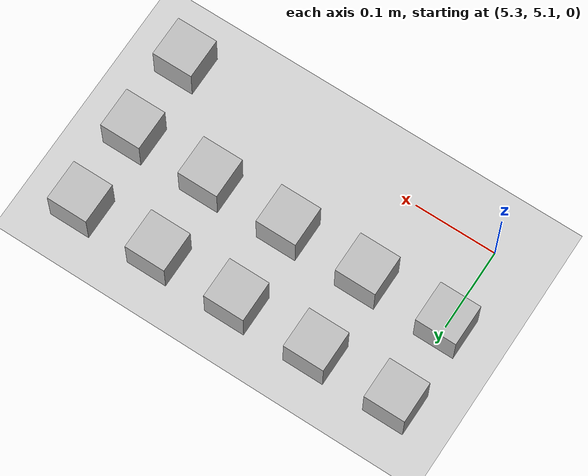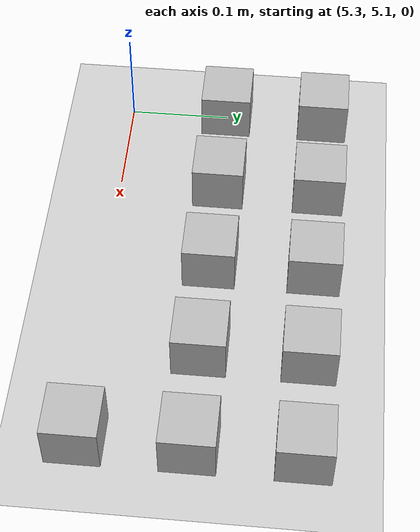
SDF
<sdf version="5.1">
 <world name="default">
  <model name="ground_plane">
   <static>1</static>
   <link name="link">
    <collision name="collision">
     <geometry><plane><normal>0 0 1</normal><size>100 100</size></plane></geometry>
     <surface><friction><ode><mu>100</mu><mu2>50</mu2></ode></friction></surface>
    </collision>
    <visual name="visual">
     <cast_shadows>0</cast_shadows>
     <geometry><plane><normal>0 0 1</normal><size>100 100</size></plane></geometry>
     <material>
      <script><uri>file://media/materials/scripts/gazebo.material</uri><name>Gazebo/Grey</name></script>
     </material>
    </visual>
   </link>
  </model>
  <model name="at67">
   <static>0</static>
   <link name="link">
    <inertial>
     <mass>0.01</mass>
     <inertia><ixx>4e-05</ixx><ixy>0</ixy><ixz>0</ixz><iyy>4e-05</iyy><iyz>0</iyz><izz>4e-05</izz></inertia>
    </inertial>
    <visual name="visual">
     <geometry><box><size>0.05 0.05 0.05</size></box></geometry>
     <material>
      <script>
       <uri>model://at0/materials/scripts</uri>
       <uri>model://at0/materials/textures</uri>
       <name>at0/Diffuse</name>
      </script>
     </material>
    </visual>
    <collision name="collision">
     <geometry><box><size>0.05 0.05 0.05</size></box></geometry>
     <surface><friction><ode><mu>0.8</mu><mu2>0.7</mu2></ode></friction></surface>
    </collision>
   </link>
   <pose>5.3 5.2 0.025 0 -0 0</pose>
  </model>
  <model name="at68">
   <static>0</static>
   <link name="link">
    <inertial>
     <mass>0.01</mass>
     <inertia><ixx>4e-05</ixx><ixy>0</ixy><ixz>0</ixz><iyy>4e-05</iyy><iyz>0</iyz><izz>4e-05</izz></inertia>
    </inertial>
    <visual name="visual">
     <geometry><box><size>0.05 0.05 0.05</size></box></geometry>
     <material>
      <script>
       <uri>model://at0/materials/scripts</uri>
       <uri>model://at0/materials/textures</uri>
       <name>at0/Diffuse</name>
      </script>
     </material>
    </visual>
    <collision name="collision">
     <geometry><box><size>0.05 0.05 0.05</size></box></geometry>
     <surface><friction><ode><mu>0.8</mu><mu2>0.7</mu2></ode></friction></surface>
    </collision>
   </link>
   <pose>5.4 5.2 0.025 0 -0 0</pose>
  </model>
  <model name="at69">
   <static>0</static>
   <link name="link">
    <inertial>
     <mass>0.01</mass>
     <inertia><ixx>4e-05</ixx><ixy>0</ixy><ixz>0</ixz><iyy>4e-05</iyy><iyz>0</iyz><izz>4e-05</izz></inertia>
    </inertial>
    <visual name="visual">
     <geometry><box><size>0.05 0.05 0.05</size></box></geometry>
     <material>
      <script>
       <uri>model://at0/materials/scripts</uri>
       <uri>model://at0/materials/textures</uri>
       <name>at0/Diffuse</name>
      </script>
     </material>
    </visual>
    <collision name="collision">
     <geometry><box><size>0.05 0.05 0.05</size></box></geometry>
     <surface><friction><ode><mu>0.8</mu><mu2>0.7</mu2></ode></friction></surface>
    </collision>
   </link>
   <pose>5.5 5.2 0.025 0 -0 0</pose>
  </model>
  <model name="at70">
   <static>0</static>
   <link name="link">
    <inertial>
     <mass>0.01</mass>
     <inertia><ixx>4e-05</ixx><ixy>0</ixy><ixz>0</ixz><iyy>4e-05</iyy><iyz>0</iyz><izz>4e-05</izz></inertia>
    </inertial>
    <visual name="visual">
     <geometry><box><size>0.05 0.05 0.05</size></box></geometry>
     <material>
      <script>
       <uri>model://at0/materials/scripts</uri>
       <uri>model://at0/materials/textures</uri>
       <name>at0/Diffuse</name>
      </script>
     </material>
    </visual>
    <collision name="collision">
     <geometry><box><size>0.05 0.05 0.05</size></box></geometry>
     <surface><friction><ode><mu>0.8</mu><mu2>0.7</mu2></ode></friction></surface>
    </collision>
   </link>
   <pose>5.6 5.2 0.025 0 -0 0</pose>
  </model>
  <model name="at71">
   <static>0</static>
   <link name="link">
    <inertial>
     <mass>0.01</mass>
     <inertia><ixx>4e-05</ixx><ixy>0</ixy><ixz>0</ixz><iyy>4e-05</iyy><iyz>0</iyz><izz>4e-05</izz></inertia>
    </inertial>
    <visual name="visual">
     <geometry><box><size>0.05 0.05 0.05</size></box></geometry>
     <material>
      <script>
       <uri>model://at0/materials/scripts</uri>
       <uri>model://at0/materials/textures</uri>
       <name>at0/Diffuse</name>
      </script>
     </material>
    </visual>
    <collision name="collision">
     <geometry><box><size>0.05 0.05 0.05</size></box></geometry>
     <surface><friction><ode><mu>0.8</mu><mu2>0.7</mu2></ode></friction></surface>
    </collision>
   </link>
   <pose>5.7 5.2 0.025 0 -0 0</pose>
  </model>
  <model name="at79">
   <static>0</static>
   <link name="link">
    <inertial>
     <mass>0.01</mass>
     <inertia><ixx>4e-05</ixx><ixy>0</ixy><ixz>0</ixz><iyy>4e-05</iyy><iyz>0</iyz><izz>4e-05</izz></inertia>
    </inertial>
    <visual name="visual">
     <geometry><box><size>0.05 0.05 0.05</size></box></geometry>
     <material>
      <script>
       <uri>model://at0/materials/scripts</uri>
       <uri>model://at0/materials/textures</uri>
       <name>at0/Diffuse</name>
      </script>
     </material>
    </visual>
    <collision name="collision">
     <geometry><box><size>0.05 0.05 0.05</size></box></geometry>
     <surface><friction><ode><mu>0.8</mu><mu2>0.7</mu2></ode></friction></surface>
    </collision>
   </link>
   <pose>5.7 5.1 0.025 0 -0 0</pose>
  </model>
  <model name="at91">
   <static>0</static>
   <link name="link">
    <inertial>
     <mass>0.01</mass>
     <inertia><ixx>4e-05</ixx><ixy>0</ixy><ixz>0</ixz><iyy>4e-05</iyy><iyz>0</iyz><izz>4e-05</izz></inertia>
    </inertial>
    <visual name="visual">
     <geometry><box><size>0.05 0.05 0.05</size></box></geometry>
     <material>
      <script>
       <uri>model://at0/materials/scripts</uri>
       <uri>model://at0/materials/textures</uri>
       <name>at0/Diffuse</name>
      </script>
     </material>
    </visual>
    <collision name="collision">
     <geometry><box><size>0.05 0.05 0.05</size></box></geometry>
     <surface><friction><ode><mu>0.8</mu><mu2>0.7</mu2></ode></friction></surface>
    </collision>
   </link>
   <pose>5.3 5.3 0.025 0 -0 0</pose>
  </model>
  <model name="at92">
   <static>0</static>
   <link name="link">
    <inertial>
     <mass>0.01</mass>
     <inertia><ixx>4e-05</ixx><ixy>0</ixy><ixz>0</ixz><iyy>4e-05</iyy><iyz>0</iyz><izz>4e-05</izz></inertia>
    </inertial>
    <visual name="visual">
     <geometry><box><size>0.05 0.05 0.05</size></box></geometry>
     <material>
      <script>
       <uri>model://at0/materials/scripts</uri>
       <uri>model://at0/materials/textures</uri>
       <name>at0/Diffuse</name>
      </script>
     </material>
    </visual>
    <collision name="collision">
     <geometry><box><size>0.05 0.05 0.05</size></box></geometry>
     <surface><friction><ode><mu>0.8</mu><mu2>0.7</mu2></ode></friction></surface>
    </collision>
   </link>
   <pose>5.4 5.3 0.025 0 -0 0</pose>
  </model>
  <model name="at93">
   <static>0</static>
   <link name="link">
    <inertial>
     <mass>0.01</mass>
     <inertia><ixx>4e-05</ixx><ixy>0</ixy><ixz>0</ixz><iyy>4e-05</iyy><iyz>0</iyz><izz>4e-05</izz></inertia>
    </inertial>
    <visual name="visual">
     <geometry><box><size>0.05 0.05 0.05</size></box></geometry>
     <material>
      <script>
       <uri>model://at0/materials/scripts</uri>
       <uri>model://at0/materials/textures</uri>
       <name>at0/Diffuse</name>
      </script>
     </material>
    </visual>
    <collision name="collision">
     <geometry><box><size>0.05 0.05 0.05</size></box></geometry>
     <surface><friction><ode><mu>0.8</mu><mu2>0.7</mu2></ode></friction></surface>
    </collision>
   </link>
   <pose>5.5 5.3 0.025 0 -0 0</pose>
  </model>
  <model name="at94">
   <static>0</static>
   <link name="link">
    <inertial>
     <mass>0.01</mass>
     <inertia><ixx>4e-05</ixx><ixy>0</ixy><ixz>0</ixz><iyy>4e-05</iyy><iyz>0</iyz><izz>4e-05</izz></inertia>
    </inertial>
    <visual name="visual">
     <geometry><box><size>0.05 0.05 0.05</size></box></geometry>
     <material>
      <script>
       <uri>model://at0/materials/scripts</uri>
       <uri>model://at0/materials/textures</uri>
       <name>at0/Diffuse</name>
      </script>
     </material>
    </visual>
    <collision name="collision">
     <geometry><box><size>0.05 0.05 0.05</size></box></geometry>
     <surface><friction><ode><mu>0.8</mu><mu2>0.7</mu2></ode></friction></surface>
    </collision>
   </link>
   <pose>5.6 5.3 0.025 0 -0 0</pose>
  </model>
  <model name="at95">
   <static>0</static>
   <link name="link">
    <inertial>
     <mass>0.01</mass>
     <inertia><ixx>4e-05</ixx><ixy>0</ixy><ixz>0</ixz><iyy>4e-05</iyy><iyz>0</iyz><izz>4e-05</izz></inertia>
    </inertial>
    <visual name="visual">
     <geometry><box><size>0.05 0.05 0.05</size></box></geometry>
     <material>
      <script>
       <uri>model://at0/materials/scripts</uri>
       <uri>model://at0/materials/textures</uri>
       <name>at0/Diffuse</name>
      </script>
     </material>
    </visual>
    <collision name="collision">
     <geometry><box><size>0.05 0.05 0.05</size></box></geometry>
     <surface><friction><ode><mu>0.8</mu><mu2>0.7</mu2></ode></friction></surface>
    </collision>
   </link>
   <pose>5.7 5.3 0.025 0 -0 0</pose>
  </model>
 </world>
</sdf>
